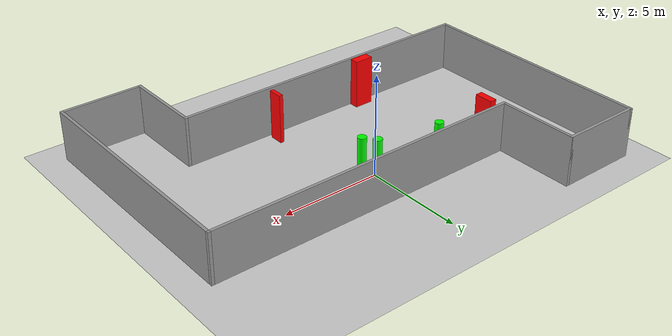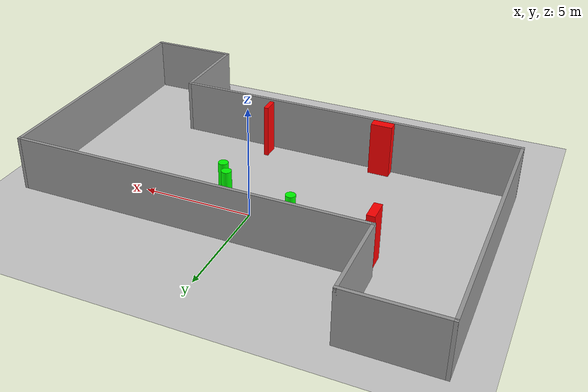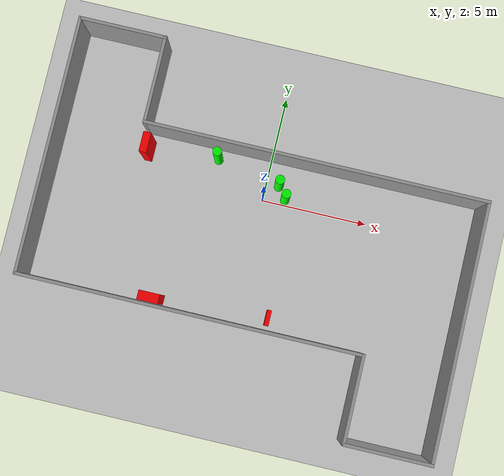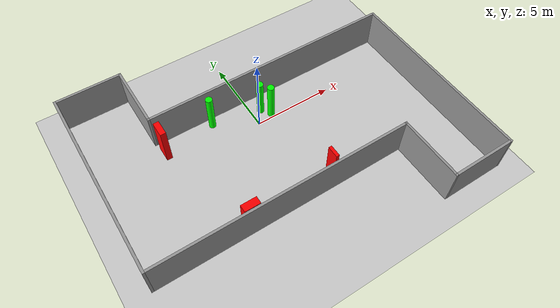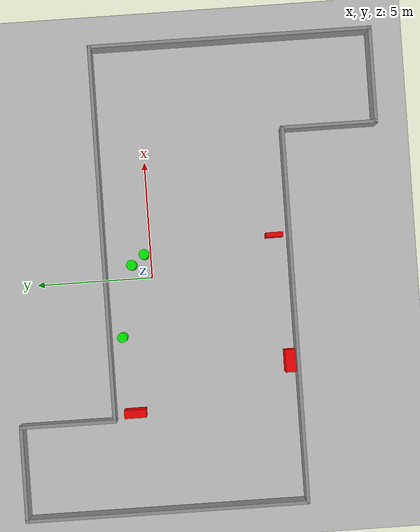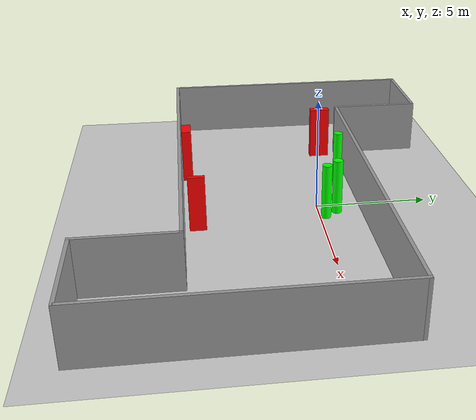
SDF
<sdf version="1.7">
 <world name="default">
  <light name="sun" type="directional">
   <pose>0 0 10 0 -0 0</pose>
   <diffuse>0.8 0.8 0.8 1</diffuse>
   <specular>0.2 0.2 0.2 1</specular>
   <attenuation>
    <range>1000</range>
    <constant>0.9</constant>
    <linear>0.01</linear>
    <quadratic>0.001</quadratic>
   </attenuation>
   <direction>-0.5 0.1 -0.9</direction>
   <spot><inner_angle>0</inner_angle><outer_angle>0</outer_angle><falloff>0</falloff></spot>
  </light>
  <model name="ground_plane">
   <static>1</static>
   <link name="link">
    <collision name="collision">
     <geometry><plane><normal>0 0 1</normal><size>100 100</size></plane></geometry>
     <surface>
      <contact><collide_bitmask>65535</collide_bitmask></contact>
      <friction><ode><mu>100</mu><mu2>50</mu2></ode></friction>
     </surface>
    </collision>
    <visual name="visual">
     <cast_shadows>0</cast_shadows>
     <geometry><plane><normal>0 0 1</normal><size>100 100</size></plane></geometry>
     <material>
      <script><uri>file://media/materials/scripts/gazebo.material</uri><name>Gazebo/Grey</name></script>
     </material>
    </visual>
   </link>
  </model>
  <gravity>0 0 -9.8</gravity>
  <magnetic_field>6e-06 2.3e-05 -4.2e-05</magnetic_field>
  <atmosphere type="adiabatic"/>
  <physics type="ode">
   <max_step_size>0.001</max_step_size>
   <real_time_factor>1</real_time_factor>
   <real_time_update_rate>1000</real_time_update_rate>
  </physics>
  <scene><ambient>0.4 0.4 0.4 1</ambient><background>0.7 0.7 0.7 1</background><shadows>1</shadows></scene>
  <spherical_coordinates>
   <surface_model>EARTH_WGS84</surface_model>
   <latitude_deg>0</latitude_deg>
   <longitude_deg>0</longitude_deg>
   <elevation>0</elevation>
   <heading_deg>0</heading_deg>
  </spherical_coordinates>
  <model name="my_base_walls">
   <link name="Wall_13">
    <collision name="Wall_13_Collision">
     <geometry><box><size>12.15 0.15 2.5</size></box></geometry>
     <pose>0 0 1.25 0 -0 0</pose>
    </collision>
    <visual name="Wall_13_Visual">
     <pose>0 0 1.25 0 -0 0</pose>
     <geometry><box><size>12.15 0.15 2.5</size></box></geometry>
     <material>
      <script><uri>file://media/materials/scripts/gazebo.material</uri><name>Gazebo/Grey</name></script>
      <ambient>1 1 1 1</ambient>
     </material>
     <meta><layer>0</layer></meta>
    </visual>
    <pose>10 -2 0 0 -0 1.5708</pose>
   </link>
   <link name="Wall_15">
    <collision name="Wall_15_Collision">
     <geometry><box><size>16.15 0.15 2.5</size></box></geometry>
     <pose>0 0 1.25 0 -0 0</pose>
    </collision>
    <visual name="Wall_15_Visual">
     <pose>0 0 1.25 0 -0 0</pose>
     <geometry><box><size>16.15 0.15 2.5</size></box></geometry>
     <material>
      <script><uri>file://media/materials/scripts/gazebo.material</uri><name>Gazebo/Grey</name></script>
      <ambient>1 1 1 1</ambient>
     </material>
     <meta><layer>0</layer></meta>
    </visual>
    <pose>2 4 0 0 -0 3.14159</pose>
   </link>
   <link name="Wall_17">
    <collision name="Wall_17_Collision">
     <geometry><box><size>4.15 0.15 2.5</size></box></geometry>
     <pose>0 0 1.25 0 -0 0</pose>
    </collision>
    <visual name="Wall_17_Visual">
     <pose>0 0 1.25 0 -0 0</pose>
     <geometry><box><size>4.15 0.15 2.5</size></box></geometry>
     <material>
      <script><uri>file://media/materials/scripts/gazebo.material</uri><name>Gazebo/Grey</name></script>
      <ambient>1 1 1 1</ambient>
     </material>
     <meta><layer>0</layer></meta>
    </visual>
    <pose>6 -6 0 0 -0 -1.5708</pose>
   </link>
   <link name="Wall_19">
    <collision name="Wall_19_Collision">
     <geometry><box><size>12.15 0.15 2.5</size></box></geometry>
     <pose>0 0 1.25 0 -0 0</pose>
    </collision>
    <visual name="Wall_19_Visual">
     <pose>0 0 1.25 0 -0 0</pose>
     <geometry><box><size>12.15 0.15 2.5</size></box></geometry>
     <material>
      <script><uri>file://media/materials/scripts/gazebo.material</uri><name>Gazebo/Grey</name></script>
      <ambient>1 1 1 1</ambient>
     </material>
     <meta><layer>0</layer></meta>
    </visual>
    <pose>-10 2 0 0 -0 1.5708</pose>
   </link>
   <link name="Wall_21">
    <collision name="Wall_21_Collision">
     <geometry><box><size>4.15 0.15 2.5</size></box></geometry>
     <pose>0 0 1.25 0 -0 0</pose>
    </collision>
    <visual name="Wall_21_Visual">
     <pose>0 0 1.25 0 -0 0</pose>
     <geometry><box><size>4.15 0.15 2.5</size></box></geometry>
     <material>
      <script><uri>file://media/materials/scripts/gazebo.material</uri><name>Gazebo/Grey</name></script>
      <ambient>1 1 1 1</ambient>
     </material>
     <meta><layer>0</layer></meta>
    </visual>
    <pose>-8 8 0 0 -0 0</pose>
   </link>
   <link name="Wall_23">
    <collision name="Wall_23_Collision">
     <geometry><box><size>4.15 0.15 2.5</size></box></geometry>
     <pose>0 0 1.25 0 -0 0</pose>
    </collision>
    <visual name="Wall_23_Visual">
     <pose>0 0 1.25 0 -0 0</pose>
     <geometry><box><size>4.15 0.15 2.5</size></box></geometry>
     <material>
      <script><uri>file://media/materials/scripts/gazebo.material</uri><name>Gazebo/Grey</name></script>
      <ambient>1 1 1 1</ambient>
     </material>
     <meta><layer>0</layer></meta>
    </visual>
    <pose>-6 6 0 0 -0 -1.5708</pose>
   </link>
   <link name="Wall_25">
    <collision name="Wall_25_Collision">
     <geometry><box><size>4.15 0.15 2.5</size></box></geometry>
     <pose>0 0 1.25 0 -0 0</pose>
    </collision>
    <visual name="Wall_25_Visual">
     <pose>0 0 1.25 0 -0 0</pose>
     <geometry><box><size>4.15 0.15 2.5</size></box></geometry>
     <material>
      <script><uri>file://media/materials/scripts/gazebo.material</uri><name>Gazebo/Grey</name></script>
      <ambient>1 1 1 1</ambient>
     </material>
     <meta><layer>0</layer></meta>
    </visual>
    <pose>8 -8 0 0 -0 0</pose>
   </link>
   <link name="Wall_9">
    <collision name="Wall_9_Collision">
     <geometry><box><size>16.15 0.15 2.5</size></box></geometry>
     <pose>0 0 1.25 0 -0 0</pose>
    </collision>
    <visual name="Wall_9_Visual">
     <pose>0 0 1.25 0 -0 0</pose>
     <geometry><box><size>16.15 0.15 2.5</size></box></geometry>
     <material>
      <script><uri>file://media/materials/scripts/gazebo.material</uri><name>Gazebo/Grey</name></script>
      <ambient>1 1 1 1</ambient>
     </material>
     <meta><layer>0</layer></meta>
    </visual>
    <pose>-2 -4 0 0 -0 3.14159</pose>
   </link>
   <static>1</static>
   <pose>-0 -2 0 0 -0 0</pose>
  </model>
  <model name="cylinder1">
   <static>1</static>
   <link name="link">
    <inertial>
     <mass>1</mass>
     <inertia><ixx>0.5</ixx><ixy>0</ixy><ixz>0</ixz><iyy>0.5</iyy><iyz>0</iyz><izz>1</izz></inertia>
    </inertial>
    <collision name="collision">
     <geometry><cylinder><radius>0.21612600717793276</radius><length>2.5</length></cylinder></geometry>
    </collision>
    <visual name="visual">
     <geometry><cylinder><radius>0.21612600717793276</radius><length>2.5</length></cylinder></geometry>
     <material>
      <ambient>0 1 0 1</ambient>
      <diffuse>0 1 0 1</diffuse>
      <specular>0.1 0.1 0.1 1</specular>
      <emissive>0 0 0 0</emissive>
     </material>
    </visual>
   </link>
   <pose>0.5975667641922104 0.8253542364333422 1.25 0 0 0</pose>
  </model>
  <model name="cylinder2">
   <static>1</static>
   <link name="link">
    <inertial>
     <mass>1</mass>
     <inertia><ixx>0.5</ixx><ixy>0</ixy><ixz>0</ixz><iyy>0.5</iyy><iyz>0</iyz><izz>1</izz></inertia>
    </inertial>
    <collision name="collision">
     <geometry><cylinder><radius>0.2138447836618337</radius><length>2.5</length></cylinder></geometry>
    </collision>
    <visual name="visual">
     <geometry><cylinder><radius>0.2138447836618337</radius><length>2.5</length></cylinder></geometry>
     <material>
      <ambient>0 1 0 1</ambient>
      <diffuse>0 1 0 1</diffuse>
      <specular>0.1 0.1 0.1 1</specular>
      <emissive>0 0 0 0</emissive>
     </material>
    </visual>
   </link>
   <pose>1.019130161929498 0.2655396958291476 1.25 0 0 0</pose>
  </model>
  <model name="cylinder3">
   <static>1</static>
   <link name="link">
    <inertial>
     <mass>1</mass>
     <inertia><ixx>0.5</ixx><ixy>0</ixy><ixz>0</ixz><iyy>0.5</iyy><iyz>0</iyz><izz>1</izz></inertia>
    </inertial>
    <collision name="collision">
     <geometry><cylinder><radius>0.20942423340180957</radius><length>2.5</length></cylinder></geometry>
    </collision>
    <visual name="visual">
     <geometry><cylinder><radius>0.20942423340180957</radius><length>2.5</length></cylinder></geometry>
     <material>
      <ambient>0 1 0 1</ambient>
      <diffuse>0 1 0 1</diffuse>
      <specular>0.1 0.1 0.1 1</specular>
      <emissive>0 0 0 0</emissive>
     </material>
    </visual>
   </link>
   <pose>-2.4713194078275866 1.425720499309687 1.25 0 0 0</pose>
  </model>
  <model name="box1">
   <static>1</static>
   <link name="link">
    <inertial>
     <mass>1</mass>
     <inertia><ixx>0.083</ixx><ixy>0</ixy><ixz>0</ixz><iyy>0.083</iyy><iyz>0</iyz><izz>0.083</izz></inertia>
    </inertial>
    <collision name="collision">
     <geometry><box><size>0.9672808937808506 0.45024918151461507 2.5</size></box></geometry>
    </collision>
    <visual name="visual">
     <geometry><box><size>0.9672808937808506 0.45024918151461507 2.5</size></box></geometry>
     <material>
      <ambient>1 0 0 1</ambient>
      <diffuse>1 0 0 1</diffuse>
      <specular>0.1 0.1 0.1 1</specular>
      <emissive>0 0 0 0</emissive>
     </material>
    </visual>
    <sensor name="my_contact" type="contact">
     <contact><collision>box_collision</collision><topic>__default_topic__</topic></contact>
    </sensor>
   </link>
   <pose>-3.941000717946072 -5.669762111522755 1.25 0 0 0</pose>
  </model>
  <model name="box2">
   <static>1</static>
   <link name="link">
    <inertial>
     <mass>1</mass>
     <inertia><ixx>0.083</ixx><ixy>0</ixy><ixz>0</ixz><iyy>0.083</iyy><iyz>0</iyz><izz>0.083</izz></inertia>
    </inertial>
    <collision name="collision">
     <geometry><box><size>0.2000212417829622 0.7231407992816745 2.5</size></box></geometry>
    </collision>
    <visual name="visual">
     <geometry><box><size>0.2000212417829622 0.7231407992816745 2.5</size></box></geometry>
     <material>
      <ambient>1 0 0 1</ambient>
      <diffuse>1 0 0 1</diffuse>
      <specular>0.1 0.1 0.1 1</specular>
      <emissive>0 0 0 0</emissive>
     </material>
    </visual>
    <sensor name="my_contact" type="contact">
     <contact><collision>box_collision</collision><topic>__default_topic__</topic></contact>
    </sensor>
   </link>
   <pose>1.476405837682063 -5.357057050512798 1.25 0 0 0</pose>
  </model>
  <model name="box3">
   <static>1</static>
   <link name="link">
    <inertial>
     <mass>1</mass>
     <inertia><ixx>0.083</ixx><ixy>0</ixy><ixz>0</ixz><iyy>0.083</iyy><iyz>0</iyz><izz>0.083</izz></inertia>
    </inertial>
    <collision name="collision">
     <geometry><box><size>0.3525569432429094 0.9354745587214546 2.5</size></box></geometry>
    </collision>
    <visual name="visual">
     <geometry><box><size>0.3525569432429094 0.9354745587214546 2.5</size></box></geometry>
     <material>
      <ambient>1 0 0 1</ambient>
      <diffuse>1 0 0 1</diffuse>
      <specular>0.1 0.1 0.1 1</specular>
      <emissive>0 0 0 0</emissive>
     </material>
    </visual>
    <sensor name="my_contact" type="contact">
     <contact><collision>box_collision</collision><topic>__default_topic__</topic></contact>
    </sensor>
   </link>
   <pose>-5.749083843750585 1.0984922307071603 1.25 0 0 0</pose>
  </model>
 </world>
</sdf>
